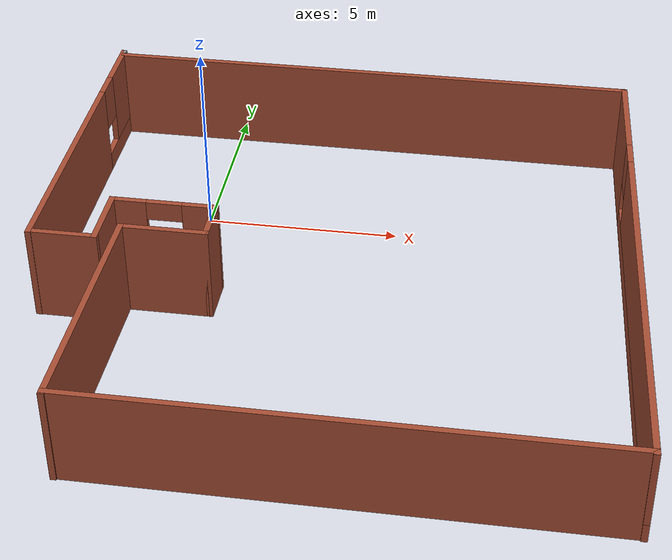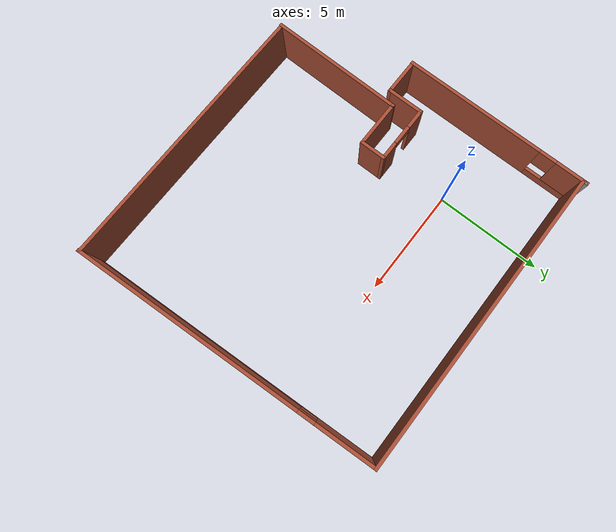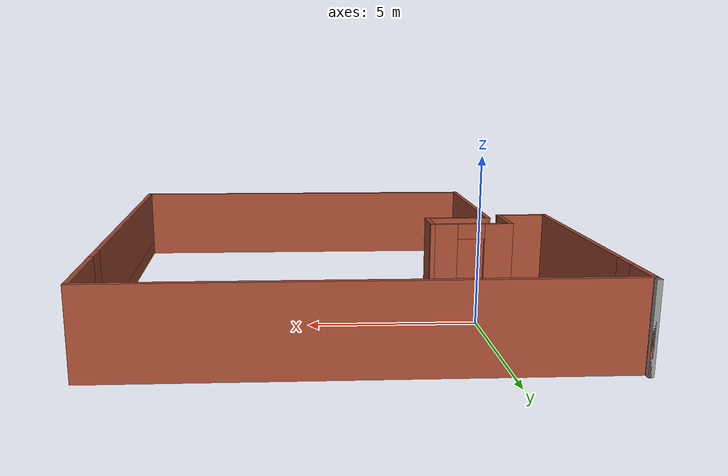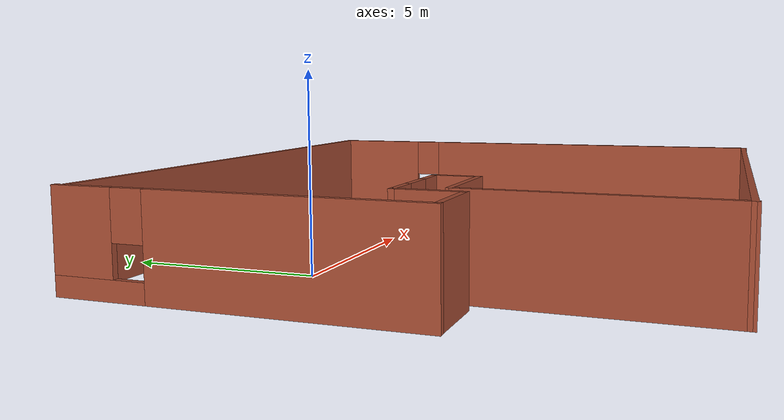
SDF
<?xml version='1.0'?>
<sdf version='1.7'>
  <model name='test'>
    <pose>4.0699 -2.86035 0 0 -0 0</pose>
    <link name='Wall_1'>
      <collision name='Wall_1_Collision'>
        <geometry>
          <box>
            <size>14.1671 0.15 2.5</size>
          </box>
        </geometry>
        <pose>0 0 1.25 0 -0 0</pose>
      </collision>
      <visual name='Wall_1_Visual'>
        <pose>0 0 1.25 0 -0 0</pose>
        <geometry>
          <box>
            <size>14.1671 0.15 2.5</size>
          </box>
        </geometry>
        <material>
          <script>
            <uri>file://media/materials/scripts/gazebo.material</uri>
            <name>Gazebo/Bricks</name>
          </script>
          <ambient>1 1 1 1</ambient>
        </material>
        <meta>
          <layer>0</layer>
        </meta>
      </visual>
      <pose>-0.356709 7.06066 0 0 -0 0</pose>
    </link>
    <link name='Wall_10'>
      <pose>-7.4199 2.80535 0 0 -0 1.5708</pose>
      <visual name='Wall_10_Visual_0'>
        <pose>-1.17997 0 1.25 0 -0 0</pose>
        <geometry>
          <box>
            <size>6.64006 0.15 2.5</size>
          </box>
        </geometry>
        <material>
          <script>
            <uri>file://media/materials/scripts/gazebo.material</uri>
            <name>Gazebo/Bricks</name>
          </script>
          <ambient>1 1 1 1</ambient>
        </material>
        <meta>
          <layer>0</layer>
        </meta>
      </visual>
      <collision name='Wall_10_Collision_0'>
        <geometry>
          <box>
            <size>6.64006 0.15 2.5</size>
          </box>
        </geometry>
        <pose>-1.17997 0 1.25 0 -0 0</pose>
      </collision>
      <visual name='Wall_10_Visual_1'>
        <pose>3.32003 0 0.25 0 -0 0</pose>
        <geometry>
          <box>
            <size>2.35994 0.15 0.5</size>
          </box>
        </geometry>
        <material>
          <script>
            <uri>file://media/materials/scripts/gazebo.material</uri>
            <name>Gazebo/Bricks</name>
          </script>
          <ambient>1 1 1 1</ambient>
        </material>
        <meta>
          <layer>0</layer>
        </meta>
      </visual>
      <collision name='Wall_10_Collision_1'>
        <geometry>
          <box>
            <size>2.35994 0.15 0.5</size>
          </box>
        </geometry>
        <pose>3.32003 0 0.25 0 -0 0</pose>
      </collision>
      <visual name='Wall_10_Visual_2'>
        <pose>3.72003 0 1.5 0 -0 0</pose>
        <geometry>
          <box>
            <size>1.55994 0.15 2</size>
          </box>
        </geometry>
        <material>
          <script>
            <uri>file://media/materials/scripts/gazebo.material</uri>
            <name>Gazebo/Bricks</name>
          </script>
          <ambient>1 1 1 1</ambient>
        </material>
        <meta>
          <layer>0</layer>
        </meta>
      </visual>
      <collision name='Wall_10_Collision_2'>
        <geometry>
          <box>
            <size>1.55994 0.15 2</size>
          </box>
        </geometry>
        <pose>3.72003 0 1.5 0 -0 0</pose>
      </collision>
      <visual name='Wall_10_Visual_3'>
        <pose>2.54006 0 1.9 0 -0 0</pose>
        <geometry>
          <box>
            <size>0.8 0.15 1.2</size>
          </box>
        </geometry>
        <material>
          <script>
            <uri>file://media/materials/scripts/gazebo.material</uri>
            <name>Gazebo/Bricks</name>
          </script>
          <ambient>1 1 1 1</ambient>
        </material>
        <meta>
          <layer>0</layer>
        </meta>
      </visual>
      <collision name='Wall_10_Collision_3'>
        <geometry>
          <box>
            <size>0.8 0.15 1.2</size>
          </box>
        </geometry>
        <pose>2.54006 0 1.9 0 -0 0</pose>
      </collision>
    </link>
    <link name='Wall_11'>
      <collision name='Wall_11_Collision'>
        <geometry>
          <box>
            <size>0.15 0.15 2.5</size>
          </box>
        </geometry>
        <pose>0 0 1.25 0 -0 0</pose>
      </collision>
      <visual name='Wall_11_Visual'>
        <pose>0 0 1.25 0 -0 0</pose>
        <geometry>
          <box>
            <size>0.15 0.15 2.5</size>
          </box>
        </geometry>
        <material>
          <script>
            <uri>file://media/materials/scripts/gazebo.material</uri>
            <name>Gazebo/Grey</name>
          </script>
          <ambient>1 1 1 1</ambient>
        </material>
        <meta>
          <layer>0</layer>
        </meta>
      </visual>
      <pose>-7.4199 7.23035 0 0 -0 0</pose>
    </link>
    <link name='Wall_2'>
      <pose>7.03391 -0.09819 0 0 -0 -1.51725</pose>
      <visual name='Wall_2_Visual_0'>
        <pose>-5.80589 0 1.25 0 -0 0</pose>
        <geometry>
          <box>
            <size>2.8152 0.15 2.5</size>
          </box>
        </geometry>
        <material>
          <script>
            <uri>file://media/materials/scripts/gazebo.material</uri>
            <name>Gazebo/Bricks</name>
          </script>
          <ambient>1 1 1 1</ambient>
        </material>
        <meta>
          <layer>0</layer>
        </meta>
      </visual>
      <collision name='Wall_2_Collision_0'>
        <geometry>
          <box>
            <size>2.8152 0.15 2.5</size>
          </box>
        </geometry>
        <pose>-5.80589 0 1.25 0 -0 0</pose>
      </collision>
      <visual name='Wall_2_Visual_1'>
        <pose>1.4076 0 0.25 0 -0 0</pose>
        <geometry>
          <box>
            <size>11.6118 0.15 0.5</size>
          </box>
        </geometry>
        <material>
          <script>
            <uri>file://media/materials/scripts/gazebo.material</uri>
            <name>Gazebo/Bricks</name>
          </script>
          <ambient>1 1 1 1</ambient>
        </material>
        <meta>
          <layer>0</layer>
        </meta>
      </visual>
      <collision name='Wall_2_Collision_1'>
        <geometry>
          <box>
            <size>11.6118 0.15 0.5</size>
          </box>
        </geometry>
        <pose>1.4076 0 0.25 0 -0 0</pose>
      </collision>
      <visual name='Wall_2_Visual_2'>
        <pose>1.8076 0 1.5 0 -0 0</pose>
        <geometry>
          <box>
            <size>10.8118 0.15 2</size>
          </box>
        </geometry>
        <material>
          <script>
            <uri>file://media/materials/scripts/gazebo.material</uri>
            <name>Gazebo/Bricks</name>
          </script>
          <ambient>1 1 1 1</ambient>
        </material>
        <meta>
          <layer>0</layer>
        </meta>
      </visual>
      <collision name='Wall_2_Collision_2'>
        <geometry>
          <box>
            <size>10.8118 0.15 2</size>
          </box>
        </geometry>
        <pose>1.8076 0 1.5 0 -0 0</pose>
      </collision>
      <visual name='Wall_2_Visual_3'>
        <pose>-3.99829 0 1.9 0 -0 0</pose>
        <geometry>
          <box>
            <size>0.8 0.15 1.2</size>
          </box>
        </geometry>
        <material>
          <script>
            <uri>file://media/materials/scripts/gazebo.material</uri>
            <name>Gazebo/Bricks</name>
          </script>
          <ambient>1 1 1 1</ambient>
        </material>
        <meta>
          <layer>0</layer>
        </meta>
      </visual>
      <collision name='Wall_2_Collision_3'>
        <geometry>
          <box>
            <size>0.8 0.15 1.2</size>
          </box>
        </geometry>
        <pose>-3.99829 0 1.9 0 -0 0</pose>
      </collision>
    </link>
    <link name='Wall_3'>
      <collision name='Wall_3_Collision'>
        <geometry>
          <box>
            <size>12.9271 0.15 2.5</size>
          </box>
        </geometry>
        <pose>0 0 1.25 0 -0 0</pose>
      </collision>
      <visual name='Wall_3_Visual'>
        <pose>0 0 1.25 0 -0 0</pose>
        <geometry>
          <box>
            <size>12.9271 0.15 2.5</size>
          </box>
        </geometry>
        <material>
          <script>
            <uri>file://media/materials/scripts/gazebo.material</uri>
            <name>Gazebo/Bricks</name>
          </script>
          <ambient>1 1 1 1</ambient>
        </material>
        <meta>
          <layer>0</layer>
        </meta>
      </visual>
      <pose>1.02746 -7.19586 0 0 -0 3.14159</pose>
    </link>
    <link name='Wall_4'>
      <collision name='Wall_4_Collision'>
        <geometry>
          <box>
            <size>6.2671 0.15 2.5</size>
          </box>
        </geometry>
        <pose>0 0 1.25 0 -0 0</pose>
      </collision>
      <visual name='Wall_4_Visual'>
        <pose>0 0 1.25 0 -0 0</pose>
        <geometry>
          <box>
            <size>6.2671 0.15 2.5</size>
          </box>
        </geometry>
        <material>
          <script>
            <uri>file://media/materials/scripts/gazebo.material</uri>
            <name>Gazebo/Bricks</name>
          </script>
          <ambient>1 1 1 1</ambient>
        </material>
        <meta>
          <layer>0</layer>
        </meta>
      </visual>
      <pose>-5.33049 -4.16805 0 0 -0 1.56079</pose>
    </link>
    <link name='Wall_5'>
      <collision name='Wall_5_Collision'>
        <geometry>
          <box>
            <size>2.25 0.15 2.5</size>
          </box>
        </geometry>
        <pose>0 0 1.25 0 -0 0</pose>
      </collision>
      <visual name='Wall_5_Visual'>
        <pose>0 0 1.25 0 -0 0</pose>
        <geometry>
          <box>
            <size>2.25 0.15 2.5</size>
          </box>
        </geometry>
        <material>
          <script>
            <uri>file://media/materials/scripts/gazebo.material</uri>
            <name>Gazebo/Bricks</name>
          </script>
          <ambient>1 1 1 1</ambient>
        </material>
        <meta>
          <layer>0</layer>
        </meta>
      </visual>
      <pose>-4.2499 -1.10965 0 0 -0 0</pose>
    </link>
    <link name='Wall_6'>
      <collision name='Wall_6_Collision'>
        <geometry>
          <box>
            <size>1.25 0.15 2.5</size>
          </box>
        </geometry>
        <pose>0 0 1.25 0 -0 0</pose>
      </collision>
      <visual name='Wall_6_Visual'>
        <pose>0 0 1.25 0 -0 0</pose>
        <geometry>
          <box>
            <size>1.25 0.15 2.5</size>
          </box>
        </geometry>
        <material>
          <script>
            <uri>file://media/materials/scripts/gazebo.material</uri>
            <name>Gazebo/Bricks</name>
          </script>
          <ambient>1 1 1 1</ambient>
        </material>
        <meta>
          <layer>0</layer>
        </meta>
      </visual>
      <pose>-3.1999 -0.559649 0 0 -0 1.5708</pose>
    </link>
    <link name='Wall_7'>
      <pose>-4.4999 -0.009648 0 0 -0 3.14159</pose>
      <visual name='Wall_7_Visual_0'>
        <pose>-0.9225 0 1.25 0 -0 0</pose>
        <geometry>
          <box>
            <size>0.905 0.15 2.5</size>
          </box>
        </geometry>
        <material>
          <script>
            <uri>file://media/materials/scripts/gazebo.material</uri>
            <name>Gazebo/Bricks</name>
          </script>
          <ambient>1 1 1 1</ambient>
        </material>
        <meta>
          <layer>0</layer>
        </meta>
      </visual>
      <collision name='Wall_7_Collision_0'>
        <geometry>
          <box>
            <size>0.905 0.15 2.5</size>
          </box>
        </geometry>
        <pose>-0.9225 0 1.25 0 -0 0</pose>
      </collision>
      <visual name='Wall_7_Visual_1'>
        <pose>0.9025 0 1.25 0 -0 0</pose>
        <geometry>
          <box>
            <size>0.945 0.15 2.5</size>
          </box>
        </geometry>
        <material>
          <script>
            <uri>file://media/materials/scripts/gazebo.material</uri>
            <name>Gazebo/Bricks</name>
          </script>
          <ambient>1 1 1 1</ambient>
        </material>
        <meta>
          <layer>0</layer>
        </meta>
      </visual>
      <collision name='Wall_7_Collision_1'>
        <geometry>
          <box>
            <size>0.945 0.15 2.5</size>
          </box>
        </geometry>
        <pose>0.9025 0 1.25 0 -0 0</pose>
      </collision>
      <visual name='Wall_7_Visual_2'>
        <pose>-0.02 0 2.25 0 -0 0</pose>
        <geometry>
          <box>
            <size>0.9 0.15 0.5</size>
          </box>
        </geometry>
        <material>
          <script>
            <uri>file://media/materials/scripts/gazebo.material</uri>
            <name>Gazebo/Bricks</name>
          </script>
          <ambient>1 1 1 1</ambient>
        </material>
        <meta>
          <layer>0</layer>
        </meta>
      </visual>
      <collision name='Wall_7_Collision_2'>
        <geometry>
          <box>
            <size>0.9 0.15 0.5</size>
          </box>
        </geometry>
        <pose>-0.02 0 2.25 0 -0 0</pose>
      </collision>
    </link>
    <link name='Wall_8'>
      <collision name='Wall_8_Collision'>
        <geometry>
          <box>
            <size>1.75 0.15 2.5</size>
          </box>
        </geometry>
        <pose>0 0 1.25 0 -0 0</pose>
      </collision>
      <visual name='Wall_8_Visual'>
        <pose>0 0 1.25 0 -0 0</pose>
        <geometry>
          <box>
            <size>1.75 0.15 2.5</size>
          </box>
        </geometry>
        <material>
          <script>
            <uri>file://media/materials/scripts/gazebo.material</uri>
            <name>Gazebo/Bricks</name>
          </script>
          <ambient>1 1 1 1</ambient>
        </material>
        <meta>
          <layer>0</layer>
        </meta>
      </visual>
      <pose>-5.7999 -0.809649 0 0 -0 -1.5708</pose>
    </link>
    <link name='Wall_9'>
      <collision name='Wall_9_Collision'>
        <geometry>
          <box>
            <size>1.76 0.15 2.5</size>
          </box>
        </geometry>
        <pose>0 0 1.25 0 -0 0</pose>
      </collision>
      <visual name='Wall_9_Visual'>
        <pose>0 0 1.25 0 -0 0</pose>
        <geometry>
          <box>
            <size>1.76 0.15 2.5</size>
          </box>
        </geometry>
        <material>
          <script>
            <uri>file://media/materials/scripts/gazebo.material</uri>
            <name>Gazebo/Bricks</name>
          </script>
          <ambient>1 1 1 1</ambient>
        </material>
        <meta>
          <layer>0</layer>
        </meta>
      </visual>
      <pose>-6.6049 -1.60965 0 0 -0 3.14159</pose>
    </link>
    <static>1</static>
  </model>
</sdf>
